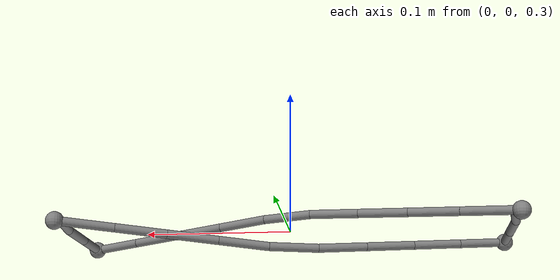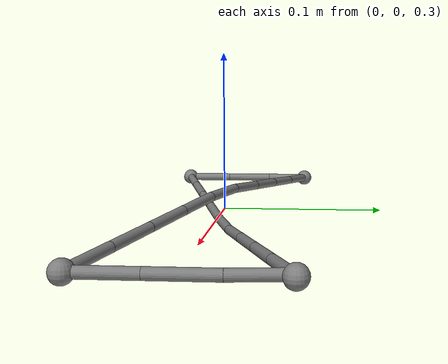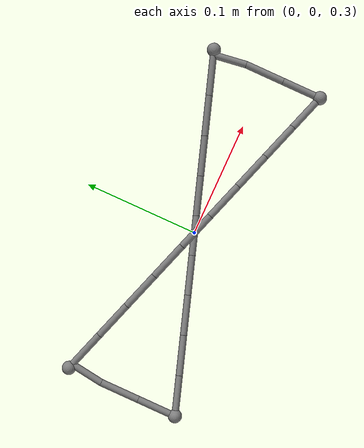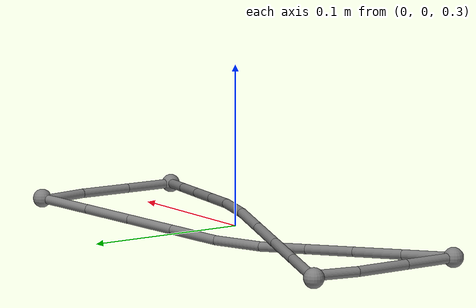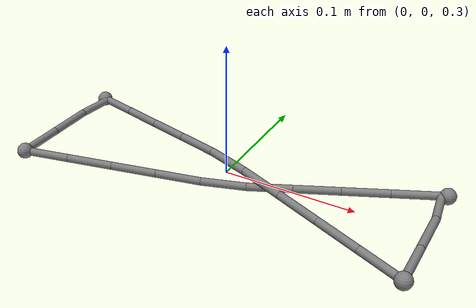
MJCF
<mujoco model="cats_cradle">
  <option timestep="0.002" gravity="0 0 -9.81" integrator="implicitfast"/>
  <default>
	<geom type="capsule" size="0.003" density="1200" friction="0.6 0.005 0.0001" condim="3"/>
  </default>
  <worldbody>
	<site name="left_thumb" pos="-0.15000 -0.05000 0.30000" size="0.006"/>
	<site name="right_index" pos="0.15000 0.05000 0.30000" size="0.006"/>
	<site name="right_thumb" pos="0.15000 -0.05000 0.30000" size="0.006"/>
	<site name="left_index" pos="-0.15000 0.05000 0.30000" size="0.006"/>
	<body name="seg0" pos="-0.13356 -0.04452 0.29868">
	  <freejoint/>
	  <geom name="g0" fromto="-0.01644 -0.00548 0.00132 0.01644 0.00548 -0.00132"/>
	</body>
	<body name="seg1" pos="-0.10068 -0.03356 0.29605">
	  <freejoint/>
	  <geom name="g1" fromto="-0.01644 -0.00548 0.00132 0.01644 0.00548 -0.00132"/>
	</body>
	<body name="seg2" pos="-0.06779 -0.02260 0.29342">
	  <freejoint/>
	  <geom name="g2" fromto="-0.01644 -0.00548 0.00132 0.01644 0.00548 -0.00132"/>
	</body>
	<body name="seg3" pos="-0.03491 -0.01164 0.29079">
	  <freejoint/>
	  <geom name="g3" fromto="-0.01644 -0.00548 0.00132 0.01644 0.00548 -0.00132"/>
	</body>
	<body name="seg4" pos="-0.00203 -0.00068 0.28932">
	  <freejoint/>
	  <geom name="g4" fromto="-0.01644 -0.00548 0.00016 0.01644 0.00548 -0.00016"/>
	</body>
	<body name="seg5" pos="0.03086 0.01029 0.29047">
	  <freejoint/>
	  <geom name="g5" fromto="-0.01644 -0.00548 -0.00132 0.01644 0.00548 0.00132"/>
	</body>
	<body name="seg6" pos="0.06374 0.02125 0.29310">
	  <freejoint/>
	  <geom name="g6" fromto="-0.01644 -0.00548 -0.00132 0.01644 0.00548 0.00132"/>
	</body>
	<body name="seg7" pos="0.09662 0.03221 0.29573">
	  <freejoint/>
	  <geom name="g7" fromto="-0.01644 -0.00548 -0.00132 0.01644 0.00548 0.00132"/>
	</body>
	<body name="seg8" pos="0.12951 0.04317 0.29836">
	  <freejoint/>
	  <geom name="g8" fromto="-0.01644 -0.00548 -0.00132 0.01644 0.00548 0.00132"/>
	</body>
	<body name="seg9" pos="0.14797 0.03409 0.29984">
	  <freejoint/>
	  <geom name="g9" fromto="-0.00203 0.01456 -0.00016 0.00203 -0.01456 0.00016"/>
	</body>
	<body name="seg10" pos="0.15000 0.00214 0.30000">
	  <freejoint/>
	  <geom name="g10" fromto="0.00000 0.01738 0.00000 0.00000 -0.01738 0.00000"/>
	</body>
	<body name="seg11" pos="0.15000 -0.03262 0.30000">
	  <freejoint/>
	  <geom name="g11" fromto="0.00000 0.01738 0.00000 0.00000 -0.01738 0.00000"/>
	</body>
	<body name="seg12" pos="0.13356 -0.04452 0.30132">
	  <freejoint/>
	  <geom name="g12" fromto="0.01644 -0.00548 -0.00132 -0.01644 0.00548 0.00132"/>
	</body>
	<body name="seg13" pos="0.10068 -0.03356 0.30395">
	  <freejoint/>
	  <geom name="g13" fromto="0.01644 -0.00548 -0.00132 -0.01644 0.00548 0.00132"/>
	</body>
	<body name="seg14" pos="0.06779 -0.02260 0.30658">
	  <freejoint/>
	  <geom name="g14" fromto="0.01644 -0.00548 -0.00132 -0.01644 0.00548 0.00132"/>
	</body>
	<body name="seg15" pos="0.03491 -0.01164 0.30921">
	  <freejoint/>
	  <geom name="g15" fromto="0.01644 -0.00548 -0.00132 -0.01644 0.00548 0.00132"/>
	</body>
	<body name="seg16" pos="0.00203 -0.00068 0.31068">
	  <freejoint/>
	  <geom name="g16" fromto="0.01644 -0.00548 -0.00016 -0.01644 0.00548 0.00016"/>
	</body>
	<body name="seg17" pos="-0.03086 0.01029 0.30953">
	  <freejoint/>
	  <geom name="g17" fromto="0.01644 -0.00548 0.00132 -0.01644 0.00548 -0.00132"/>
	</body>
	<body name="seg18" pos="-0.06374 0.02125 0.30690">
	  <freejoint/>
	  <geom name="g18" fromto="0.01644 -0.00548 0.00132 -0.01644 0.00548 -0.00132"/>
	</body>
	<body name="seg19" pos="-0.09662 0.03221 0.30427">
	  <freejoint/>
	  <geom name="g19" fromto="0.01644 -0.00548 0.00132 -0.01644 0.00548 -0.00132"/>
	</body>
	<body name="seg20" pos="-0.12951 0.04317 0.30164">
	  <freejoint/>
	  <geom name="g20" fromto="0.01644 -0.00548 0.00132 -0.01644 0.00548 -0.00132"/>
	</body>
	<body name="seg21" pos="-0.14797 0.03409 0.30016">
	  <freejoint/>
	  <geom name="g21" fromto="0.00203 0.01456 0.00016 -0.00203 -0.01456 -0.00016"/>
	</body>
	<body name="seg22" pos="-0.15000 0.00214 0.30000">
	  <freejoint/>
	  <geom name="g22" fromto="0.00000 0.01738 0.00000 0.00000 -0.01738 0.00000"/>
	</body>
	<body name="seg23" pos="-0.15000 -0.03262 0.30000">
	  <freejoint/>
	  <geom name="g23" fromto="0.00000 0.01738 0.00000 0.00000 -0.01738 0.00000"/>
	</body>
  </worldbody>
  <equality>
	<connect name="link0" body1="seg0" body2="seg1" anchor="0.01644 0.00548 -0.00132"/>
	<connect name="link1" body1="seg1" body2="seg2" anchor="0.01644 0.00548 -0.00132"/>
	<connect name="link2" body1="seg2" body2="seg3" anchor="0.01644 0.00548 -0.00132"/>
	<connect name="link3" body1="seg3" body2="seg4" anchor="0.01644 0.00548 -0.00132"/>
	<connect name="link4" body1="seg4" body2="seg5" anchor="0.01644 0.00548 -0.00016"/>
	<connect name="link5" body1="seg5" body2="seg6" anchor="0.01644 0.00548 0.00132"/>
	<connect name="link6" body1="seg6" body2="seg7" anchor="0.01644 0.00548 0.00132"/>
	<connect name="link7" body1="seg7" body2="seg8" anchor="0.01644 0.00548 0.00132"/>
	<connect name="link8" body1="seg8" body2="seg9" anchor="0.01644 0.00548 0.00132"/>
	<connect name="link9" body1="seg9" body2="seg10" anchor="0.00203 -0.01456 0.00016"/>
	<connect name="link10" body1="seg10" body2="seg11" anchor="0.00000 -0.01738 0.00000"/>
	<connect name="link11" body1="seg11" body2="seg12" anchor="0.00000 -0.01738 0.00000"/>
	<connect name="link12" body1="seg12" body2="seg13" anchor="-0.01644 0.00548 0.00132"/>
	<connect name="link13" body1="seg13" body2="seg14" anchor="-0.01644 0.00548 0.00132"/>
	<connect name="link14" body1="seg14" body2="seg15" anchor="-0.01644 0.00548 0.00132"/>
	<connect name="link15" body1="seg15" body2="seg16" anchor="-0.01644 0.00548 0.00132"/>
	<connect name="link16" body1="seg16" body2="seg17" anchor="-0.01644 0.00548 0.00016"/>
	<connect name="link17" body1="seg17" body2="seg18" anchor="-0.01644 0.00548 -0.00132"/>
	<connect name="link18" body1="seg18" body2="seg19" anchor="-0.01644 0.00548 -0.00132"/>
	<connect name="link19" body1="seg19" body2="seg20" anchor="-0.01644 0.00548 -0.00132"/>
	<connect name="link20" body1="seg20" body2="seg21" anchor="-0.01644 0.00548 -0.00132"/>
	<connect name="link21" body1="seg21" body2="seg22" anchor="-0.00203 -0.01456 -0.00016"/>
	<connect name="link22" body1="seg22" body2="seg23" anchor="0.00000 -0.01738 0.00000"/>
	<connect name="link23" body1="seg23" body2="seg0" anchor="0.00000 -0.01738 0.00000"/>
	<connect name="hold_left_thumb" body1="seg0" anchor="-0.01644 -0.00548 0.00132"/>
	<connect name="hold_right_index" body1="seg9" anchor="0.00203 0.01591 0.00016"/>
	<connect name="hold_right_thumb" body1="seg12" anchor="0.01644 -0.00548 -0.00132"/>
	<connect name="hold_left_index" body1="seg21" anchor="-0.00203 0.01591 -0.00016"/>
  </equality>
  <contact>
	<exclude body1="seg0" body2="seg1"/>
	<exclude body1="seg0" body2="seg2"/>
	<exclude body1="seg1" body2="seg2"/>
	<exclude body1="seg1" body2="seg3"/>
	<exclude body1="seg2" body2="seg3"/>
	<exclude body1="seg2" body2="seg4"/>
	<exclude body1="seg3" body2="seg4"/>
	<exclude body1="seg3" body2="seg5"/>
	<exclude body1="seg4" body2="seg5"/>
	<exclude body1="seg4" body2="seg6"/>
	<exclude body1="seg5" body2="seg6"/>
	<exclude body1="seg5" body2="seg7"/>
	<exclude body1="seg6" body2="seg7"/>
	<exclude body1="seg6" body2="seg8"/>
	<exclude body1="seg7" body2="seg8"/>
	<exclude body1="seg7" body2="seg9"/>
	<exclude body1="seg8" body2="seg9"/>
	<exclude body1="seg8" body2="seg10"/>
	<exclude body1="seg9" body2="seg10"/>
	<exclude body1="seg9" body2="seg11"/>
	<exclude body1="seg10" body2="seg11"/>
	<exclude body1="seg10" body2="seg12"/>
	<exclude body1="seg11" body2="seg12"/>
	<exclude body1="seg11" body2="seg13"/>
	<exclude body1="seg12" body2="seg13"/>
	<exclude body1="seg12" body2="seg14"/>
	<exclude body1="seg13" body2="seg14"/>
	<exclude body1="seg13" body2="seg15"/>
	<exclude body1="seg14" body2="seg15"/>
	<exclude body1="seg14" body2="seg16"/>
	<exclude body1="seg15" body2="seg16"/>
	<exclude body1="seg15" body2="seg17"/>
	<exclude body1="seg16" body2="seg17"/>
	<exclude body1="seg16" body2="seg18"/>
	<exclude body1="seg17" body2="seg18"/>
	<exclude body1="seg17" body2="seg19"/>
	<exclude body1="seg18" body2="seg19"/>
	<exclude body1="seg18" body2="seg20"/>
	<exclude body1="seg19" body2="seg20"/>
	<exclude body1="seg19" body2="seg21"/>
	<exclude body1="seg20" body2="seg21"/>
	<exclude body1="seg20" body2="seg22"/>
	<exclude body1="seg21" body2="seg22"/>
	<exclude body1="seg21" body2="seg23"/>
	<exclude body1="seg22" body2="seg23"/>
	<exclude body1="seg22" body2="seg0"/>
	<exclude body1="seg23" body2="seg0"/>
	<exclude body1="seg23" body2="seg1"/>
  </contact>
</mujoco>
